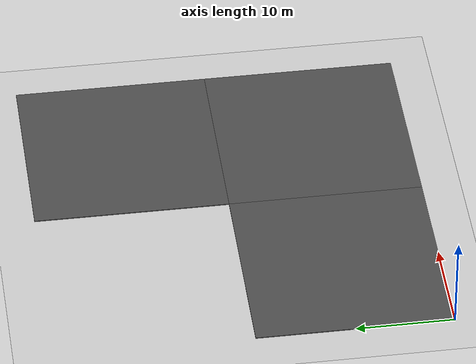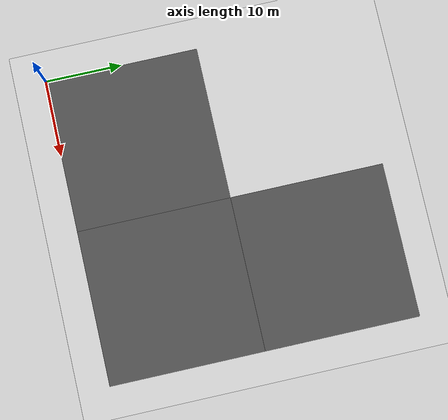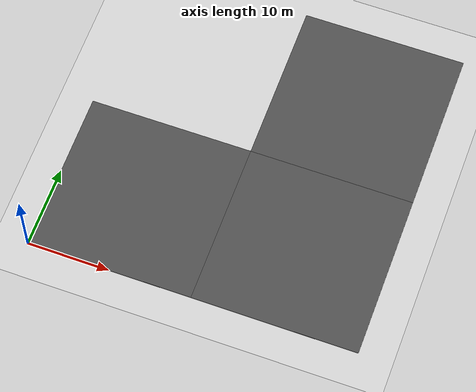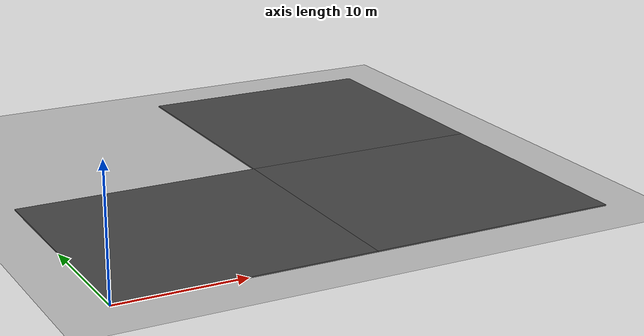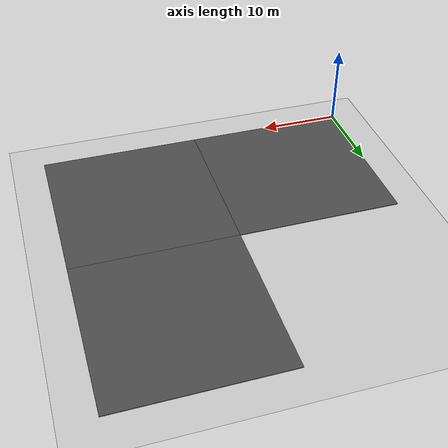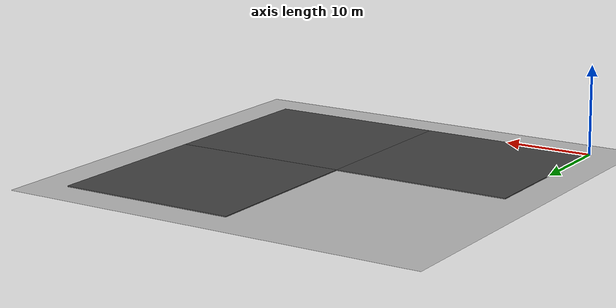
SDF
<sdf version="1.4">
 <world name="default">
  <model name="ground_plane">
   <static>1</static>
   <link name="link">
    <collision name="collision">
     <geometry><plane><normal>0 0 1</normal><size>100 100</size></plane></geometry>
     <surface><friction><ode><mu>100</mu><mu2>50</mu2></ode></friction></surface>
    </collision>
    <visual name="visual">
     <cast_shadows>0</cast_shadows>
     <geometry><plane><normal>0 0 1</normal><size>100 100</size></plane></geometry>
     <material>
      <script><uri>file://media/materials/scripts/gazebo.material</uri><name>Gazebo/Grey</name></script>
     </material>
    </visual>
    <velocity_decay><linear>0</linear><angular>0</angular></velocity_decay>
   </link>
  </model>
  <model name="asphalt_plane">
   <static>1</static>
   <link name="link">
    <collision name="collision"><geometry><box><size>20 20 0.1</size></box></geometry></collision>
    <visual name="visual">
     <cast_shadows>0</cast_shadows>
     <geometry><box><size>20 20 0.1</size></box></geometry>
     <material>
      <script>
       <uri>model://asphalt_plane/materials/scripts</uri>
       <uri>model://asphalt_plane/materials/textures</uri>
       <name>vrc/asphalt</name>
      </script>
     </material>
    </visual>
    <velocity_decay><linear>0</linear><angular>0</angular></velocity_decay>
   </link>
   <pose>10 10 0 0 -0 0</pose>
  </model>
  <model name="asphalt_plane_10">
   <static>1</static>
   <link name="link">
    <collision name="collision"><geometry><box><size>20 20 0.1</size></box></geometry></collision>
    <visual name="visual">
     <cast_shadows>0</cast_shadows>
     <geometry><box><size>20 20 0.1</size></box></geometry>
     <material>
      <script>
       <uri>model://asphalt_plane/materials/scripts</uri>
       <uri>model://asphalt_plane/materials/textures</uri>
       <name>vrc/asphalt</name>
      </script>
     </material>
    </visual>
    <velocity_decay><linear>0</linear><angular>0</angular></velocity_decay>
   </link>
   <pose>30 10 0 0 -0 0</pose>
  </model>
  <model name="asphalt_plane_11">
   <static>1</static>
   <link name="link">
    <collision name="collision"><geometry><box><size>20 20 0.1</size></box></geometry></collision>
    <visual name="visual">
     <cast_shadows>0</cast_shadows>
     <geometry><box><size>20 20 0.1</size></box></geometry>
     <material>
      <script>
       <uri>model://asphalt_plane/materials/scripts</uri>
       <uri>model://asphalt_plane/materials/textures</uri>
       <name>vrc/asphalt</name>
      </script>
     </material>
    </visual>
    <velocity_decay><linear>0</linear><angular>0</angular></velocity_decay>
   </link>
   <pose>30 30 0 0 -0 0</pose>
  </model>
 </world>
</sdf>
